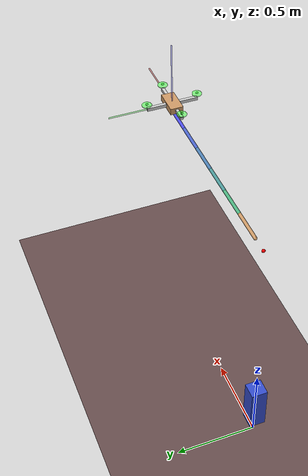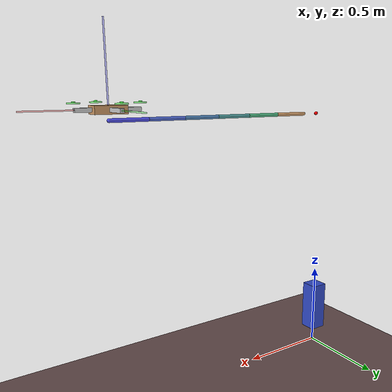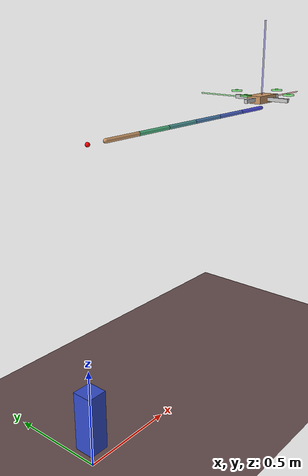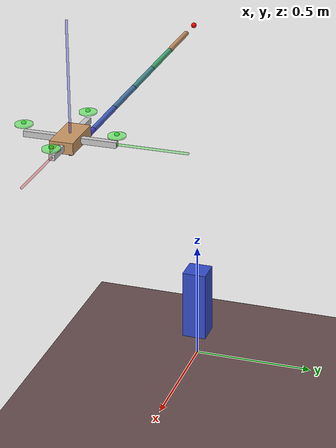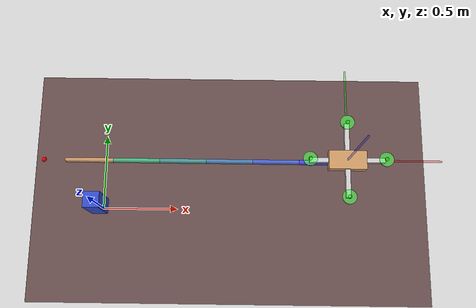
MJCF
<mujoco model="cantilever_2d_drone">
    <compiler angle="degree" inertiafromgeom="true" coordinate="local"/>
    <option timestep="0.01" gravity="0 0 -9.81" density="1" viscosity="1e-5" integrator="RK4"/>

    <default>
        <joint damping="0.0005" stiffness="0.001" limited="true"/>
        <geom conaffinity="0" condim="3" density="500" friction="1 0.5 0.5" margin="0.01" rgba="0.8 0.6 0.4 1"/>
    </default>

    <asset>
        <texture builtin="gradient" type="skybox" height="100" width="100" rgb1="1 1 1" rgb2="0.6 0.8 1"/>
        <texture name="texplane" builtin="checker" height="100" width="100" rgb1="0.7 0.7 0.7" rgb2="0.9 0.9 0.9" type="2d"/>
        <material name="MatPlane" reflectance="0.3" shininess="1" specular="0.5" texrepeat="5 5" texture="texplane"/>
        <material name="MatBeam" specular="0.3" shininess="0.5" rgba="0.3 0.7 0.3 1"/>
        <material name="MatDrone" specular="0.5" shininess="1" rgba="0.8 0.2 0.2 1"/>
    </asset>

    <worldbody>
        <light cutoff="100" diffuse="1 1 1" dir="-0 0 -1.3" directional="true" exponent="1" pos="0 0 1.3" specular=".1 .1 .1"/>
        <geom conaffinity="1" condim="3" material="MatPlane" name="floor" pos="0 0 0" rgba="0.4 0.3 0.3 1" size="5 5 0.2" type="plane"/>
        <geom name="wall" type="box" size="0.05 0.05 0.15" pos="0 0 0.25" rgba="0.2 0.3 0.8 1"/>

        <!-- ⚙️ Base fija de la viga -->
        <body name="beam_base" pos="0.05 0 1.5">
            <site name="base_site" pos="0 0 0" size="0.01" rgba="1 0 0 1"/>
            <!-- 🔗 Barra flexible con 6 segmentos -->
            <body name="seg1" pos="0.1 0 0">
                <joint name="hinge1" type="hinge" axis="0 1 0" range="-15 15"/>
                <geom type="capsule" fromto="0 0 0 0.200 0 0" size="0.01" material="MatBeam" mass="0.017"/>
                <body name="seg2" pos="0.200 0 0">
                    <joint name="hinge2_y" type="hinge" axis="0 1 0" range="-15 15" damping="0.0005" stiffness="0.0001"/>
                    <joint name="hinge2_z" type="hinge" axis="0 0 1" range="-15 15" damping="0.0005" stiffness="0.0001"/>
                    <geom type="capsule" fromto="0 0 0 0.200 0 0" size="0.01" rgba="0.3 0.70 0.50 1" mass="0.017"/>
                <body name="seg3" pos="0.200 0 0">
                    <joint name="hinge3_y" type="hinge" axis="0 1 0" range="-15 15" damping="0.0005" stiffness="0.0001"/>
                    <joint name="hinge3_z" type="hinge" axis="0 0 1" range="-15 15" damping="0.0005" stiffness="0.0001"/>
                    <geom type="capsule" fromto="0 0 0 0.200 0 0" size="0.01" rgba="0.3 0.60 0.60 1" mass="0.017"/>
                <body name="seg4" pos="0.200 0 0">
                    <joint name="hinge4_y" type="hinge" axis="0 1 0" range="-15 15" damping="0.0005" stiffness="0.0001"/>
                    <joint name="hinge4_z" type="hinge" axis="0 0 1" range="-15 15" damping="0.0005" stiffness="0.0001"/>
                    <geom type="capsule" fromto="0 0 0 0.200 0 0" size="0.01" rgba="0.3 0.50 0.70 1" mass="0.017"/>
                <body name="seg5" pos="0.200 0 0">
                    <joint name="hinge5_y" type="hinge" axis="0 1 0" range="-15 15" damping="0.0005" stiffness="0.0001"/>
                    <joint name="hinge5_z" type="hinge" axis="0 0 1" range="-15 15" damping="0.0005" stiffness="0.0001"/>
                    <geom type="capsule" fromto="0 0 0 0.200 0 0" size="0.01" rgba="0.3 0.40 0.80 1" mass="0.017"/>
                <body name="seg6" pos="0.200 0 0">
                    <joint name="hinge6_y" type="hinge" axis="0 1 0" range="-15 15" damping="0.0005" stiffness="0.0001"/>
                    <joint name="hinge6_z" type="hinge" axis="0 0 1" range="-15 15" damping="0.0005" stiffness="0.0001"/>
                    <geom type="capsule" fromto="0 0 0 0.200 0 0" size="0.01" rgba="0.3 0.30 0.90 1" mass="0.017"/>

                        <!-- 🚁 Dron 3D unido con articulación esférica (ball) al extremo -->
                        <body name="drone_3d" pos="0.20 0.00 0.05">
                            <!-- 🔵 Unión esférica: permite rotación libre 3D (limited="false" : espherica, true: fixed)-->
                            <joint name="drone_ball" type="ball" damping="0.01" stiffness="0" limited="false"/>

                            <geom name="drone_body" type="box" size="0.08 0.04 0.02" material="MatDrone" mass="0.30" contype="0" conaffinity="0"/>

                            <!-- brazos (ahora en cruz 3D simple) -->
                            <geom name="arm_x_pos" type="box" pos=" 0.10 0 0" size="0.06 0.01 0.01" rgba="0.8 0.8 0.8 1"/>
                            <geom name="arm_x_neg" type="box" pos="-0.10 0 0" size="0.06 0.01 0.01" rgba="0.8 0.8 0.8 1"/>
                            <geom name="arm_y_pos" type="box" pos="0  0.10 0" size="0.01 0.06 0.01" rgba="0.8 0.8 0.8 1"/>
                            <geom name="arm_y_neg" type="box" pos="0 -0.10 0" size="0.01 0.06 0.01" rgba="0.8 0.8 0.8 1"/>

                            <!-- hélices (4 para 3D real, si quieres seguir con 2 dime y lo dejo “2 motores”) -->
                            <body name="prop0" pos=" 0.16  0.00 0.03">
                                <geom type="cylinder" size="0.03 0.003" rgba="0.3 1 0.3 0.6"/>
                                <site name="motor0" pos="0 0 0.003" size="0.008" rgba="0 1 0 0.7" type="cylinder"/>
                            </body>
                            <body name="prop1" pos="-0.16  0.00 0.03">
                                <geom type="cylinder" size="0.03 0.003" rgba="0.3 1 0.3 0.6"/>
                                <site name="motor1" pos="0 0 0.003" size="0.008" rgba="0 1 0 0.7" type="cylinder"/>
                            </body>
                            <body name="prop2" pos=" 0.00  0.16 0.03">
                                <geom type="cylinder" size="0.03 0.003" rgba="0.3 1 0.3 0.6"/>
                                <site name="motor2" pos="0 0 0.003" size="0.008" rgba="0 1 0 0.7" type="cylinder"/>
                            </body>
                            <body name="prop3" pos=" 0.00 -0.16 0.03">
                                <geom type="cylinder" size="0.03 0.003" rgba="0.3 1 0.3 0.6"/>
                                <site name="motor3" pos="0 0 0.003" size="0.008" rgba="0 1 0 0.7" type="cylinder"/>
                            </body>

                            <!-- ejes -->
                            <site name="x_axis" type="box" pos="0.20 0 0" size="0.20 0.003 0.003" rgba="1 0 0 0.3"/>
                            <site name="y_axis" type="box" pos="0 0.20 0" size="0.003 0.20 0.003" rgba="0 1 0 0.3"/>
                            <site name="z_axis" type="box" pos="0 0 0.20" size="0.003 0.003 0.20" rgba="0 0 1 0.3"/>
                        </body>

                </body>
                </body>
                </body>
                </body>
                </body>
            </body>
        </body>
    </worldbody>

    <!-- ⚙️ Actuadores (2 hélices) -->
    <actuator>
        <motor site="motor0" ctrlrange="0 2" gear="0 0 1 0 0 -0.05"/>
        <motor site="motor1" ctrlrange="0 2" gear="0 0 1 0 0  0.05"/>
        <motor site="motor2" ctrlrange="0 2" gear="0 0 1 0 0 -0.05"/>
        <motor site="motor3" ctrlrange="0 2" gear="0 0 1 0 0  0.05"/>
    </actuator>

    <!-- 📡 Sensores -->
    <sensor>
        <framepos  name="pos_drone"  objtype="body" objname="drone_3d"/>
        <framequat name="quat_drone" objtype="body" objname="drone_3d"/>
        <framelinvel name="linvel_drone" objtype="body" objname="drone_3d"/>
        <frameangvel name="rotvel_drone" objtype="body" objname="drone_3d"/>
    </sensor>

    <!-- 🧩 Restricción 2D (bloquear movimiento en Y) -->
    <equality>
        <!-- Base fija: viga anclada al mundo -->
        <weld name="beam_base_fixed" active="true" body1="world" body2="beam_base"
            solimp="0.9 0.95 0.001" solref="0.02 1"/>
    </equality>

</mujoco>
